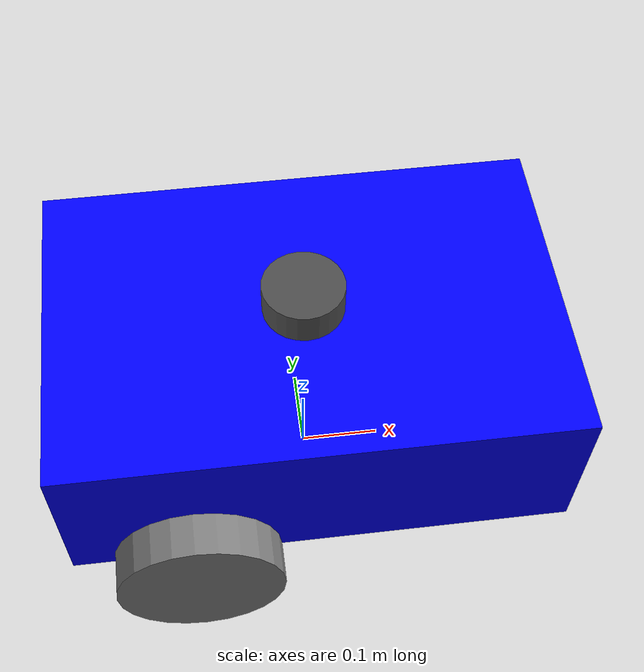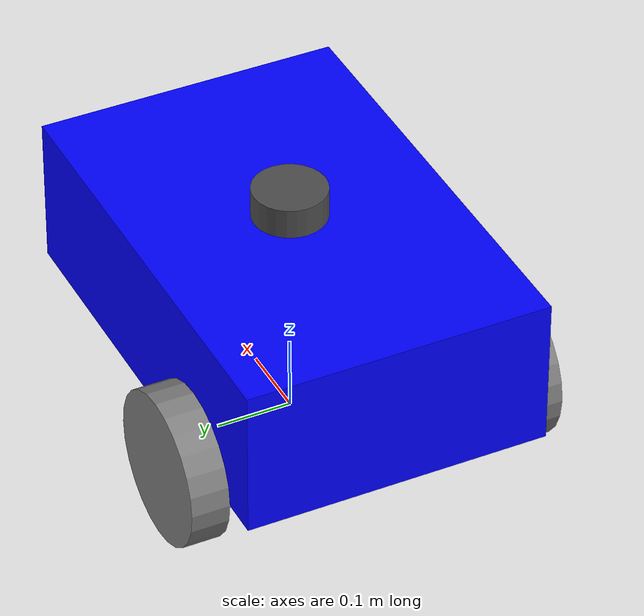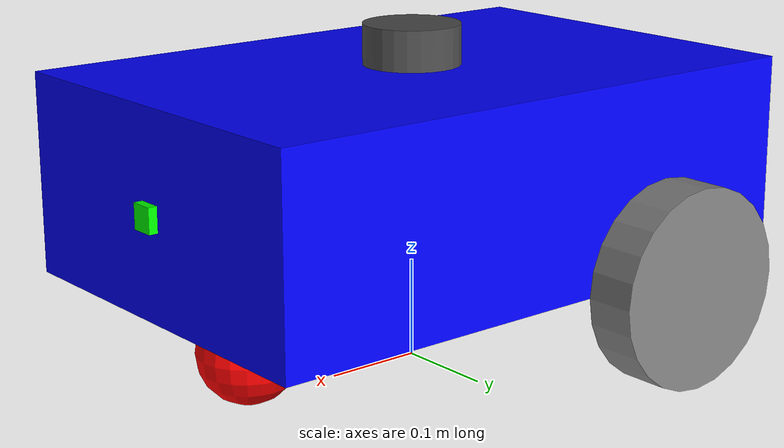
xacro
<?xml version="1.0"?>

<robot name="ddr_robot" xmlns:xacro="http://www.ros.org/wiki/xacro">

    <xacro:include filename="$(find ddr_description)/urdf/properties.xacro" />
    <xacro:include filename="$(find ddr_description)/urdf/gazebo.xacro" />
    <xacro:include filename="$(find ddr_description)/urdf/ros2_control.xacro" />
    <link name="base_footprint" />

    <link name="base_link">
        <visual>
            <geometry>
                <box size="${base_length} ${base_width} ${base_height}" />
            </geometry>
            <origin xyz="0 0 ${base_height / 2.0}" rpy="0 0 0" />
            <material name="blue" />
        </visual>
        <collision>
            <geometry>
                <box size="${base_length} ${base_width} ${base_height}" />
            </geometry>
            <origin xyz="0 0 ${base_height / 2.0}" rpy="0 0 0" />
        </collision>
        <xacro:inertial_box mass="${base_mass}" x="${base_length}" y="${base_width}"
                                z="${base_height}">
                            <origin xyz="0 0 ${base_height / 2.0}" rpy="0 0 0" />
        </xacro:inertial_box>
    </link>

    <xacro:macro name="wheel_link" params="prefix">
        <link name="${prefix}_wheel_link">
            <visual>
                <geometry>
                    <cylinder radius="${wheel_radius}" length="${wheel_length}" />
                </geometry>
                <origin xyz="0 0 0" rpy="${pi / 2.0} 0 0" />
                <material name="grey" />
            </visual>
            <collision>
                <geometry>
                    <cylinder radius="${wheel_radius}" length="${wheel_length}" />
                </geometry>
                <origin xyz="0 0 0" rpy="${pi / 2.0} 0 0" />
            </collision>
            <xacro:inertial_cylinder mass="${wheel_mass}" length="${wheel_length}"
                                                        radius="${wheel_radius}">
                                    <origin xyz="0 0 0" rpy="${pi / 2.0} 0 0" />
            </xacro:inertial_cylinder>
        </link>
    </xacro:macro>

    <xacro:wheel_link prefix="right" />
    <xacro:wheel_link prefix="left" />

    <link name="caster_wheel_link">
        <visual>
            <geometry>
                <sphere radius="${caster_radius}" />
            </geometry>
            <origin xyz="0 0 0" rpy="0 0 0" />
            <material name="red" />
        </visual>
        <collision>
            <geometry>
                <sphere radius="${caster_radius}" />
            </geometry>
            <origin xyz="0 0 0" rpy="0 0 0" />
        </collision>
        <xacro:inertial_sphere mass="${caster_mass}"
                               radius="${caster_radius}">
                               <origin xyz="0 0 0" rpy="0 0 0"/>
        </xacro:inertial_sphere>
    </link>

    <link name="laser_link">
        <visual>
            <geometry>
                <cylinder radius="${lidar_radius}" length="${lidar_length}" />
            </geometry>
            <origin xyz="0 0 0" rpy="0 0 0" />
            <material name="dark_grey" />
        </visual>
        <collision>
            <geometry>
                <cylinder radius="${lidar_radius}" length="${lidar_length}" />
            </geometry>
            <origin xyz="0 0 0" rpy="0 0 0" />
        </collision>
        <xacro:inertial_cylinder mass="${lidar_mass}" length="${lidar_length}"
                                                      radius="${lidar_radius}">
                                <origin xyz="0 0 0" rpy="0 0 0" />
        </xacro:inertial_cylinder>
    </link>

    <link name="camera_optical_frame" />

    <link name="camera_link">
        <visual>
            <geometry>
                <box size="${camera_length} ${camera_width} ${camera_height}" />
            </geometry>
            <origin xyz="0 0 0" rpy="0 ${pi / 2.0} 0" />
            <material name="green" />
        </visual>
        <collision>
             <geometry>
                <box size="${camera_length} ${camera_width} ${camera_height}" />
            </geometry>
            <origin xyz="0 0 0" rpy="0 ${pi / 2.0} 0" />
        </collision>
        <xacro:inertial_box mass="${camera_mass}" x="${camera_length}" y="${camera_width}"
                                z="${camera_height}">
                            <origin xyz="0 0 0" rpy="0 ${pi / 2.0} 0" />
        </xacro:inertial_box>
    </link>

    <link name="imu_link">
        <visual>
            <geometry>
                <box size="${imu_length} ${imu_width} ${imu_height}" />
            </geometry>
            <origin xyz="0 0 0" rpy="0 0 0" />
            <material name="blue" />
        </visual>
        <collision>
            <geometry>
                <box size="${imu_length} ${imu_width} ${imu_height}" />
            </geometry>
            <origin xyz="0 0 0" rpy="0 0 0" />
        </collision>
        <xacro:inertial_box mass="${imu_mass}" x="${imu_length}" y="${imu_width}"
                                z="${imu_height}">
                            <origin xyz="0 0 0" rpy="0 0 0" />
        </xacro:inertial_box>
    </link>

    <joint name="base_joint" type="fixed">
        <parent link="base_footprint" />
        <child link="base_link" />
        <origin xyz="0 0 ${wheel_radius}" rpy="0 0 0" />
    </joint>

    <xacro:macro name="wheel_joint" params="prefix sign">
        <joint name="${prefix}_wheel_joint" type="continuous">
            <parent link="base_link" />
            <child link="${prefix}_wheel_link" />
            <origin xyz="-${base_length / 4.0} ${sign * wheel_separation / 2.0} 0" rpy="0 0 0" />
            <axis xyz="0 1 0" />
        </joint>
    </xacro:macro>

    <xacro:wheel_joint prefix="right" sign="1" />
    <xacro:wheel_joint prefix="left" sign="-1" />

    <joint name="caster_wheel_joint" type="fixed">
        <parent link="base_link" />
        <child link="caster_wheel_link" />
        <origin xyz="${base_length / 3.0} 0 -${caster_radius}" rpy="0 0 0" />
    </joint>

    <joint name="laser_joint" type="fixed">
        <parent link="base_link" />
        <child link="laser_link" />
        <origin xyz="0 0 ${base_height + lidar_length / 2.0}" rpy="0 0 0" />
    </joint>

    <joint name="camera_optical_joint" type="fixed">
        <parent link="camera_link" />
        <child link="camera_optical_frame" />
        <origin xyz="0 0 0" rpy="${-pi / 2.0} 0 ${-pi / 2.0}" />
    </joint>

    <joint name="camera_joint" type="fixed">
        <parent link="base_link" />
        <child link="camera_link" />
        <origin xyz="${base_length / 2.0 + camera_height / 2.0} 0 ${base_height / 2.0}" rpy="0 0 0" />
    </joint>

    <joint name="imu_joint" type="fixed">
        <parent link="base_link" />
        <child link="imu_link" />
        <origin xyz="0 0 ${base_height / 2.0}" rpy="0 0 0" />
    </joint>

</robot>

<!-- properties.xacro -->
<robot name="ddr_robot" xmlns:xacro="http://www.ros.org/wiki/xacro">

    <!-- Base -->
    <xacro:property name="base_length" value="0.6" />
    <xacro:property name="base_width" value="0.4" />
    <xacro:property name="base_height" value="0.2" />
    <xacro:property name="base_mass" value="8.0" />

    <!-- Wheels -->
    <xacro:property name="wheel_radius" value="0.1" />
    <xacro:property name="wheel_length" value="0.05" />
    <xacro:property name="wheel_mass" value="0.5" />
    <xacro:property name="wheel_separation" value="${base_width + wheel_length}" />
    <xacro:property name="caster_radius" value="${wheel_radius / 2.0}" />
    <xacro:property name="caster_mass" value="0.2" />

    <!-- LiDAR -->
    <xacro:property name="lidar_radius" value="0.0484" />
    <xacro:property name="lidar_length" value="0.0403" />
    <xacro:property name="lidar_mass" value="0.1" />

    <!-- Camera -->
    <xacro:property name="camera_length" value="0.025" />
    <xacro:property name="camera_width" value="0.024" />
    <xacro:property name="camera_height" value="0.009" />
    <xacro:property name="camera_mass" value="0.05" />

    <!-- IMU -->
    <xacro:property name="imu_length" value="0.04" />
    <xacro:property name="imu_width" value="0.03" />
    <xacro:property name="imu_height" value="0.01" />
    <xacro:property name="imu_mass" value="0.02" />

    <!-- Materials -->
    <material name="red">
        <color rgba="1 0 0 1" />
    </material>

    <material name="green">
        <color rgba="0 1 0 1" />
    </material>

    <material name="blue">
        <color rgba="0 0 1 1" />
    </material>

    <material name="grey">
        <color rgba="0.5 0.5 0.5 1" />
    </material>

    <material name="dark_grey">
        <color rgba="0.3 0.3 0.3 1" />
    </material>

    <xacro:macro name="inertial_box" params="mass x y z *origin">
        <inertial>
            <xacro:insert_block name="origin"/>
            <mass value="${mass}" />
            <inertia ixx="${(1/12) * mass * (y*y+z*z)}" ixy="0.0" ixz="0.0"
                    iyy="${(1/12) * mass * (x*x+z*z)}" iyz="0.0"
                    izz="${(1/12) * mass * (x*x+y*y)}" />
        </inertial>
    </xacro:macro>

    <xacro:macro name="inertial_cylinder" params="mass length radius *origin">
        <inertial>
            <xacro:insert_block name="origin"/>
            <mass value="${mass}" />
            <inertia ixx="${(1/12) * mass * (3*radius*radius + length*length)}" ixy="0.0" ixz="0.0"
                    iyy="${(1/12) * mass * (3*radius*radius + length*length)}" iyz="0.0"
                    izz="${(1/2) * mass * (radius*radius)}" />
        </inertial>
    </xacro:macro>

    <xacro:macro name="inertial_sphere" params="mass radius *origin">
        <inertial>
            <xacro:insert_block name="origin"/>
            <mass value="${mass}" />
            <inertia ixx="${(2/5) * mass * (radius*radius)}" ixy="0.0" ixz="0.0"
                    iyy="${(2/5) * mass * (radius*radius)}" iyz="0.0"
                    izz="${(2/5) * mass * (radius*radius)}" />
        </inertial>
    </xacro:macro>

</robot>
